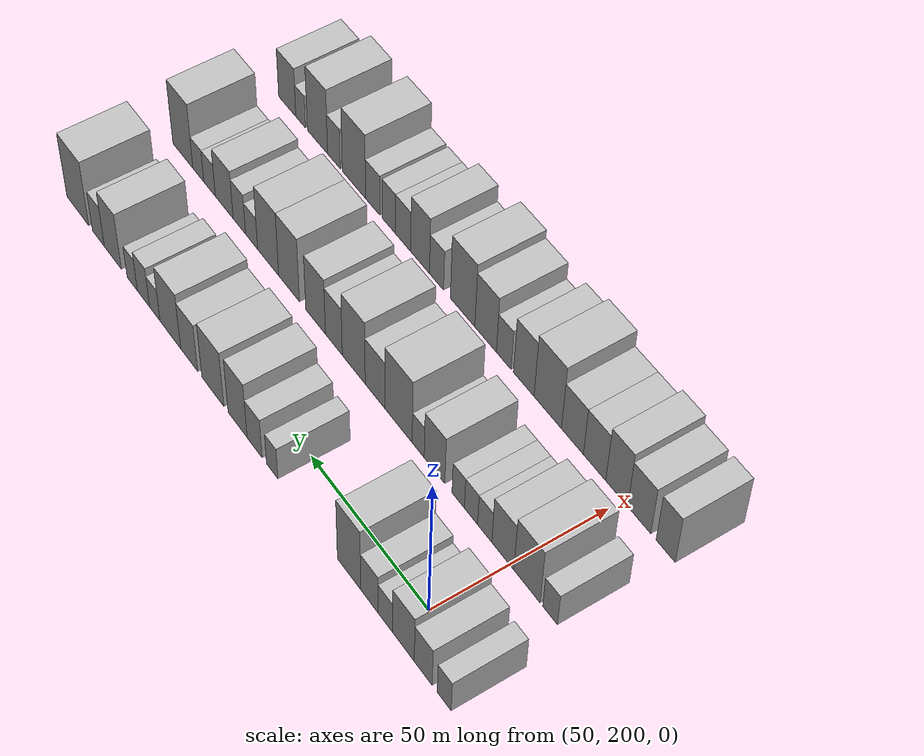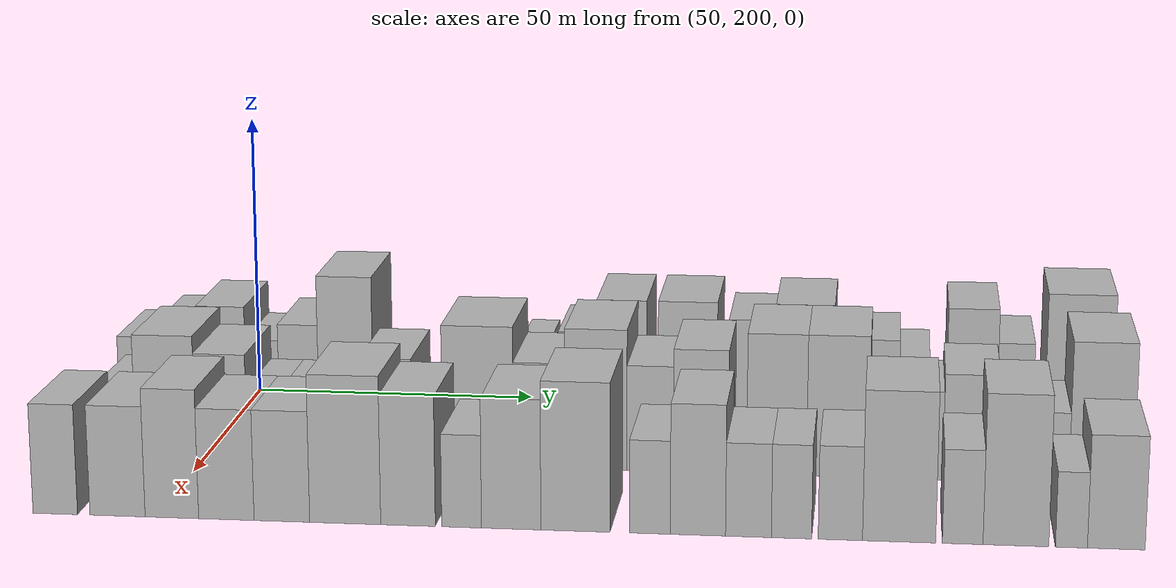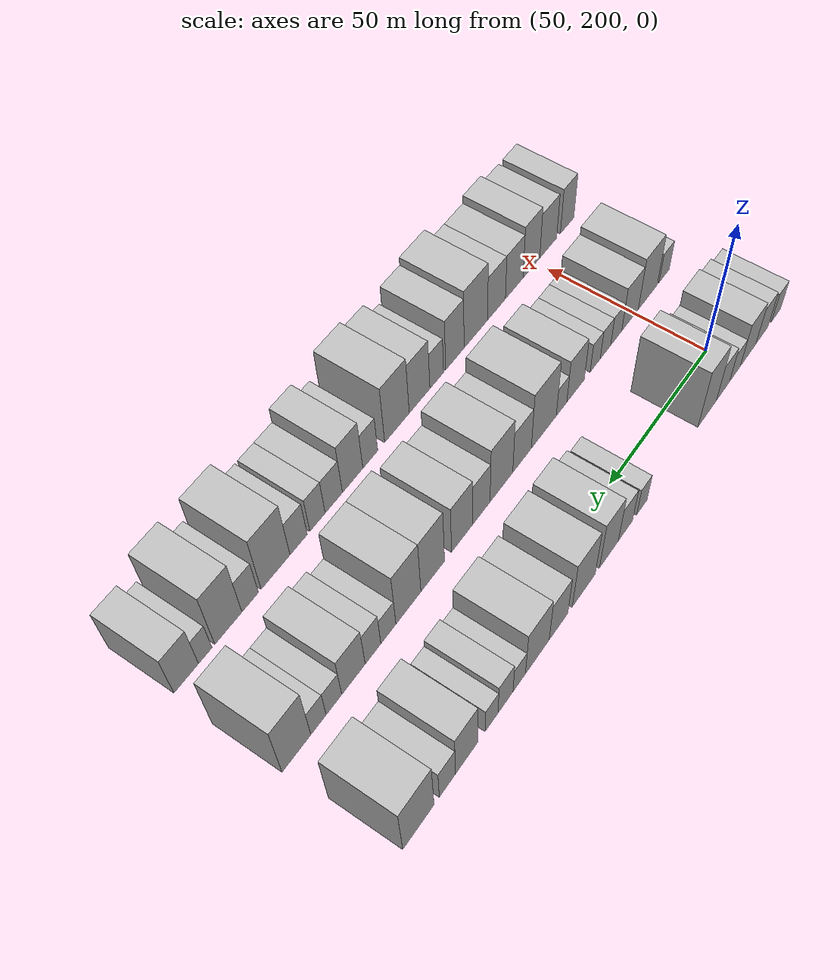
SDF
<sdf version="1.6">
 <world name="default">
  <model name="building_59">
   <static>1</static>
   <pose>50.0000 179.1119 0 0.000000 0.000000 0.000000</pose>
   <link name="link">
    <pose>0 0 6.00 0 0 0</pose>
    <collision name="collision"><geometry><box><size>20.0000 5.4572 12.0000</size></box></geometry></collision>
    <visual name="visual">
     <cast_shadows>0</cast_shadows>
     <geometry><box><size>20.0000 5.4572 12.0000</size></box></geometry>
     <material>
      <script>
       <uri>model://HANNAS_wall/materials/scripts</uri>
       <uri>model://HANNAS_wall/materials/textures</uri>
       <name>vrc/HANNAS_wall</name>
      </script>
     </material>
    </visual>
   </link>
  </model>
  <model name="building_60">
   <static>1</static>
   <pose>50.0000 187.4081 0 0.000000 0.000000 0.000000</pose>
   <link name="link">
    <pose>0 0 7.50 0 0 0</pose>
    <collision name="collision"><geometry><box><size>20.0000 7.1351 15.0000</size></box></geometry></collision>
    <visual name="visual">
     <cast_shadows>0</cast_shadows>
     <geometry><box><size>20.0000 7.1351 15.0000</size></box></geometry>
     <material>
      <script>
       <uri>model://HANNAS_wall/materials/scripts</uri>
       <uri>model://HANNAS_wall/materials/textures</uri>
       <name>vrc/HANNAS_wall</name>
      </script>
     </material>
    </visual>
   </link>
  </model>
  <model name="building_61">
   <static>1</static>
   <pose>50.0000 195.3512 0 0.000000 0.000000 0.000000</pose>
   <link name="link">
    <pose>0 0 9.00 0 0 0</pose>
    <collision name="collision"><geometry><box><size>20.0000 8.7512 18.0000</size></box></geometry></collision>
    <visual name="visual">
     <cast_shadows>0</cast_shadows>
     <geometry><box><size>20.0000 8.7512 18.0000</size></box></geometry>
     <material>
      <script>
       <uri>model://HANNAS_wall/materials/scripts</uri>
       <uri>model://HANNAS_wall/materials/textures</uri>
       <name>vrc/HANNAS_wall</name>
      </script>
     </material>
    </visual>
   </link>
  </model>
  <model name="building_62">
   <static>1</static>
   <pose>50.0000 202.7137 0 0.000000 0.000000 0.000000</pose>
   <link name="link">
    <pose>0 0 6.00 0 0 0</pose>
    <collision name="collision"><geometry><box><size>20.0000 5.9738 12.0000</size></box></geometry></collision>
    <visual name="visual">
     <cast_shadows>0</cast_shadows>
     <geometry><box><size>20.0000 5.9738 12.0000</size></box></geometry>
     <material>
      <script>
       <uri>model://HANNAS_wall/materials/scripts</uri>
       <uri>model://HANNAS_wall/materials/textures</uri>
       <name>vrc/HANNAS_wall</name>
      </script>
     </material>
    </visual>
   </link>
  </model>
  <model name="building_63">
   <static>1</static>
   <pose>50.0000 209.2945 0 0.000000 0.000000 0.000000</pose>
   <link name="link">
    <pose>0 0 7.50 0 0 0</pose>
    <collision name="collision"><geometry><box><size>20.0000 7.1877 15.0000</size></box></geometry></collision>
    <visual name="visual">
     <cast_shadows>0</cast_shadows>
     <geometry><box><size>20.0000 7.1877 15.0000</size></box></geometry>
     <material>
      <script>
       <uri>model://HANNAS_wall/materials/scripts</uri>
       <uri>model://HANNAS_wall/materials/textures</uri>
       <name>vrc/HANNAS_wall</name>
      </script>
     </material>
    </visual>
   </link>
  </model>
  <model name="building_64">
   <static>1</static>
   <pose>50.0000 217.8282 0 0.000000 0.000000 0.000000</pose>
   <link name="link">
    <pose>0 0 12.00 0 0 0</pose>
    <collision name="collision"><geometry><box><size>20.0000 9.8798 24.0000</size></box></geometry></collision>
    <visual name="visual">
     <cast_shadows>0</cast_shadows>
     <geometry><box><size>20.0000 9.8798 24.0000</size></box></geometry>
     <material>
      <script>
       <uri>model://HANNAS_wall/materials/scripts</uri>
       <uri>model://HANNAS_wall/materials/textures</uri>
       <name>vrc/HANNAS_wall</name>
      </script>
     </material>
    </visual>
   </link>
  </model>
  <model name="building_65">
   <static>1</static>
   <pose>50.0000 251.4666 0 0.000000 0.000000 0.000000</pose>
   <link name="link">
    <pose>0 0 6.00 0 0 0</pose>
    <collision name="collision"><geometry><box><size>20.0000 5.1324 12.0000</size></box></geometry></collision>
    <visual name="visual">
     <cast_shadows>0</cast_shadows>
     <geometry><box><size>20.0000 5.1324 12.0000</size></box></geometry>
     <material>
      <script>
       <uri>model://HANNAS_wall/materials/scripts</uri>
       <uri>model://HANNAS_wall/materials/textures</uri>
       <name>vrc/HANNAS_wall</name>
      </script>
     </material>
    </visual>
   </link>
  </model>
  <model name="building_66">
   <static>1</static>
   <pose>50.0000 259.4674 0 0.000000 0.000000 0.000000</pose>
   <link name="link">
    <pose>0 0 7.50 0 0 0</pose>
    <collision name="collision"><geometry><box><size>20.0000 6.8692 15.0000</size></box></geometry></collision>
    <visual name="visual">
     <cast_shadows>0</cast_shadows>
     <geometry><box><size>20.0000 6.8692 15.0000</size></box></geometry>
     <material>
      <script>
       <uri>model://HANNAS_wall/materials/scripts</uri>
       <uri>model://HANNAS_wall/materials/textures</uri>
       <name>vrc/HANNAS_wall</name>
      </script>
     </material>
    </visual>
   </link>
  </model>
  <model name="building_67">
   <static>1</static>
   <pose>50.0000 267.3208 0 0.000000 0.000000 0.000000</pose>
   <link name="link">
    <pose>0 0 10.50 0 0 0</pose>
    <collision name="collision"><geometry><box><size>20.0000 8.8375 21.0000</size></box></geometry></collision>
    <visual name="visual">
     <cast_shadows>0</cast_shadows>
     <geometry><box><size>20.0000 8.8375 21.0000</size></box></geometry>
     <material>
      <script>
       <uri>model://HANNAS_wall/materials/scripts</uri>
       <uri>model://HANNAS_wall/materials/textures</uri>
       <name>vrc/HANNAS_wall</name>
      </script>
     </material>
    </visual>
   </link>
  </model>
  <model name="building_68">
   <static>1</static>
   <pose>50.0000 278.9639 0 0.000000 0.000000 0.000000</pose>
   <link name="link">
    <pose>0 0 10.50 0 0 0</pose>
    <collision name="collision"><geometry><box><size>20.0000 10.4486 21.0000</size></box></geometry></collision>
    <visual name="visual">
     <cast_shadows>0</cast_shadows>
     <geometry><box><size>20.0000 10.4486 21.0000</size></box></geometry>
     <material>
      <script>
       <uri>model://HANNAS_wall/materials/scripts</uri>
       <uri>model://HANNAS_wall/materials/textures</uri>
       <name>vrc/HANNAS_wall</name>
      </script>
     </material>
    </visual>
   </link>
  </model>
  <model name="building_69">
   <static>1</static>
   <pose>50.0000 290.2985 0 0.000000 0.000000 0.000000</pose>
   <link name="link">
    <pose>0 0 9.00 0 0 0</pose>
    <collision name="collision"><geometry><box><size>20.0000 8.2206 18.0000</size></box></geometry></collision>
    <visual name="visual">
     <cast_shadows>0</cast_shadows>
     <geometry><box><size>20.0000 8.2206 18.0000</size></box></geometry>
     <material>
      <script>
       <uri>model://HANNAS_wall/materials/scripts</uri>
       <uri>model://HANNAS_wall/materials/textures</uri>
       <name>vrc/HANNAS_wall</name>
      </script>
     </material>
    </visual>
   </link>
  </model>
  <model name="building_70">
   <static>1</static>
   <pose>50.0000 299.5215 0 0.000000 0.000000 0.000000</pose>
   <link name="link">
    <pose>0 0 10.50 0 0 0</pose>
    <collision name="collision"><geometry><box><size>20.0000 10.2254 21.0000</size></box></geometry></collision>
    <visual name="visual">
     <cast_shadows>0</cast_shadows>
     <geometry><box><size>20.0000 10.2254 21.0000</size></box></geometry>
     <material>
      <script>
       <uri>model://HANNAS_wall/materials/scripts</uri>
       <uri>model://HANNAS_wall/materials/textures</uri>
       <name>vrc/HANNAS_wall</name>
      </script>
     </material>
    </visual>
   </link>
  </model>
  <model name="building_71">
   <static>1</static>
   <pose>50.0000 307.2506 0 0.000000 0.000000 0.000000</pose>
   <link name="link">
    <pose>0 0 6.00 0 0 0</pose>
    <collision name="collision"><geometry><box><size>20.0000 5.2328 12.0000</size></box></geometry></collision>
    <visual name="visual">
     <cast_shadows>0</cast_shadows>
     <geometry><box><size>20.0000 5.2328 12.0000</size></box></geometry>
     <material>
      <script>
       <uri>model://HANNAS_wall/materials/scripts</uri>
       <uri>model://HANNAS_wall/materials/textures</uri>
       <name>vrc/HANNAS_wall</name>
      </script>
     </material>
    </visual>
   </link>
  </model>
  <model name="building_72">
   <static>1</static>
   <pose>50.0000 312.9724 0 0.000000 0.000000 0.000000</pose>
   <link name="link">
    <pose>0 0 7.50 0 0 0</pose>
    <collision name="collision"><geometry><box><size>20.0000 6.2107 15.0000</size></box></geometry></collision>
    <visual name="visual">
     <cast_shadows>0</cast_shadows>
     <geometry><box><size>20.0000 6.2107 15.0000</size></box></geometry>
     <material>
      <script>
       <uri>model://HANNAS_wall/materials/scripts</uri>
       <uri>model://HANNAS_wall/materials/textures</uri>
       <name>vrc/HANNAS_wall</name>
      </script>
     </material>
    </visual>
   </link>
  </model>
  <model name="building_73">
   <static>1</static>
   <pose>50.0000 318.6747 0 0.000000 0.000000 0.000000</pose>
   <link name="link">
    <pose>0 0 6.00 0 0 0</pose>
    <collision name="collision"><geometry><box><size>20.0000 5.1940 12.0000</size></box></geometry></collision>
    <visual name="visual">
     <cast_shadows>0</cast_shadows>
     <geometry><box><size>20.0000 5.1940 12.0000</size></box></geometry>
     <material>
      <script>
       <uri>model://HANNAS_wall/materials/scripts</uri>
       <uri>model://HANNAS_wall/materials/textures</uri>
       <name>vrc/HANNAS_wall</name>
      </script>
     </material>
    </visual>
   </link>
  </model>
  <model name="building_74">
   <static>1</static>
   <pose>50.0000 328.6819 0 0.000000 0.000000 0.000000</pose>
   <link name="link">
    <pose>0 0 10.50 0 0 0</pose>
    <collision name="collision"><geometry><box><size>20.0000 8.8204 21.0000</size></box></geometry></collision>
    <visual name="visual">
     <cast_shadows>0</cast_shadows>
     <geometry><box><size>20.0000 8.8204 21.0000</size></box></geometry>
     <material>
      <script>
       <uri>model://HANNAS_wall/materials/scripts</uri>
       <uri>model://HANNAS_wall/materials/textures</uri>
       <name>vrc/HANNAS_wall</name>
      </script>
     </material>
    </visual>
   </link>
  </model>
  <model name="building_75">
   <static>1</static>
   <pose>50.0000 336.2281 0 0.000000 0.000000 0.000000</pose>
   <link name="link">
    <pose>0 0 7.50 0 0 0</pose>
    <collision name="collision"><geometry><box><size>20.0000 6.2719 15.0000</size></box></geometry></collision>
    <visual name="visual">
     <cast_shadows>0</cast_shadows>
     <geometry><box><size>20.0000 6.2719 15.0000</size></box></geometry>
     <material>
      <script>
       <uri>model://HANNAS_wall/materials/scripts</uri>
       <uri>model://HANNAS_wall/materials/textures</uri>
       <name>vrc/HANNAS_wall</name>
      </script>
     </material>
    </visual>
   </link>
  </model>
  <model name="building_76">
   <static>1</static>
   <pose>50.0000 347.2144 0 0.000000 0.000000 0.000000</pose>
   <link name="link">
    <pose>0 0 12.00 0 0 0</pose>
    <collision name="collision"><geometry><box><size>20.0000 11.7006 24.0000</size></box></geometry></collision>
    <visual name="visual">
     <cast_shadows>0</cast_shadows>
     <geometry><box><size>20.0000 11.7006 24.0000</size></box></geometry>
     <material>
      <script>
       <uri>model://HANNAS_wall/materials/scripts</uri>
       <uri>model://HANNAS_wall/materials/textures</uri>
       <name>vrc/HANNAS_wall</name>
      </script>
     </material>
    </visual>
   </link>
  </model>
  <model name="building_138">
   <static>1</static>
   <pose>82.0000 184.1875 0 0.000000 0.000000 0.000000</pose>
   <link name="link">
    <pose>0 0 6.00 0 0 0</pose>
    <collision name="collision"><geometry><box><size>20.0000 5.6949 12.0000</size></box></geometry></collision>
    <visual name="visual">
     <cast_shadows>0</cast_shadows>
     <geometry><box><size>20.0000 5.6949 12.0000</size></box></geometry>
     <material>
      <script>
       <uri>model://HANNAS_wall/materials/scripts</uri>
       <uri>model://HANNAS_wall/materials/textures</uri>
       <name>vrc/HANNAS_wall</name>
      </script>
     </material>
    </visual>
   </link>
  </model>
  <model name="building_139">
   <static>1</static>
   <pose>82.0000 193.1915 0 0.000000 0.000000 0.000000</pose>
   <link name="link">
    <pose>0 0 10.50 0 0 0</pose>
    <collision name="collision"><geometry><box><size>20.0000 10.3133 21.0000</size></box></geometry></collision>
    <visual name="visual">
     <cast_shadows>0</cast_shadows>
     <geometry><box><size>20.0000 10.3133 21.0000</size></box></geometry>
     <material>
      <script>
       <uri>model://HANNAS_wall/materials/scripts</uri>
       <uri>model://HANNAS_wall/materials/textures</uri>
       <name>vrc/HANNAS_wall</name>
      </script>
     </material>
    </visual>
   </link>
  </model>
  <model name="building_140">
   <static>1</static>
   <pose>82.0000 202.7714 0 0.000000 0.000000 0.000000</pose>
   <link name="link">
    <pose>0 0 9.00 0 0 0</pose>
    <collision name="collision"><geometry><box><size>20.0000 8.8464 18.0000</size></box></geometry></collision>
    <visual name="visual">
     <cast_shadows>0</cast_shadows>
     <geometry><box><size>20.0000 8.8464 18.0000</size></box></geometry>
     <material>
      <script>
       <uri>model://HANNAS_wall/materials/scripts</uri>
       <uri>model://HANNAS_wall/materials/textures</uri>
       <name>vrc/HANNAS_wall</name>
      </script>
     </material>
    </visual>
   </link>
  </model>
  <model name="building_141">
   <static>1</static>
   <pose>82.0000 210.0839 0 0.000000 0.000000 0.000000</pose>
   <link name="link">
    <pose>0 0 6.00 0 0 0</pose>
    <collision name="collision"><geometry><box><size>20.0000 5.7787 12.0000</size></box></geometry></collision>
    <visual name="visual">
     <cast_shadows>0</cast_shadows>
     <geometry><box><size>20.0000 5.7787 12.0000</size></box></geometry>
     <material>
      <script>
       <uri>model://HANNAS_wall/materials/scripts</uri>
       <uri>model://HANNAS_wall/materials/textures</uri>
       <name>vrc/HANNAS_wall</name>
      </script>
     </material>
    </visual>
   </link>
  </model>
  <model name="building_142">
   <static>1</static>
   <pose>82.0000 215.6792 0 0.000000 0.000000 0.000000</pose>
   <link name="link">
    <pose>0 0 6.00 0 0 0</pose>
    <collision name="collision"><geometry><box><size>20.0000 5.4118 12.0000</size></box></geometry></collision>
    <visual name="visual">
     <cast_shadows>0</cast_shadows>
     <geometry><box><size>20.0000 5.4118 12.0000</size></box></geometry>
     <material>
      <script>
       <uri>model://HANNAS_wall/materials/scripts</uri>
       <uri>model://HANNAS_wall/materials/textures</uri>
       <name>vrc/HANNAS_wall</name>
      </script>
     </material>
    </visual>
   </link>
  </model>
  <model name="building_143">
   <static>1</static>
   <pose>82.0000 220.9458 0 0.000000 0.000000 0.000000</pose>
   <link name="link">
    <pose>0 0 6.00 0 0 0</pose>
    <collision name="collision"><geometry><box><size>20.0000 5.1215 12.0000</size></box></geometry></collision>
    <visual name="visual">
     <cast_shadows>0</cast_shadows>
     <geometry><box><size>20.0000 5.1215 12.0000</size></box></geometry>
     <material>
      <script>
       <uri>model://HANNAS_wall/materials/scripts</uri>
       <uri>model://HANNAS_wall/materials/textures</uri>
       <name>vrc/HANNAS_wall</name>
      </script>
     </material>
    </visual>
   </link>
  </model>
  <model name="building_144">
   <static>1</static>
   <pose>82.0000 230.8604 0 0.000000 0.000000 0.000000</pose>
   <link name="link">
    <pose>0 0 9.00 0 0 0</pose>
    <collision name="collision"><geometry><box><size>20.0000 8.7075 18.0000</size></box></geometry></collision>
    <visual name="visual">
     <cast_shadows>0</cast_shadows>
     <geometry><box><size>20.0000 8.7075 18.0000</size></box></geometry>
     <material>
      <script>
       <uri>model://HANNAS_wall/materials/scripts</uri>
       <uri>model://HANNAS_wall/materials/textures</uri>
       <name>vrc/HANNAS_wall</name>
      </script>
     </material>
    </visual>
   </link>
  </model>
  <model name="building_145">
   <static>1</static>
   <pose>82.0000 237.7891 0 0.000000 0.000000 0.000000</pose>
   <link name="link">
    <pose>0 0 6.00 0 0 0</pose>
    <collision name="collision"><geometry><box><size>20.0000 5.1500 12.0000</size></box></geometry></collision>
    <visual name="visual">
     <cast_shadows>0</cast_shadows>
     <geometry><box><size>20.0000 5.1500 12.0000</size></box></geometry>
     <material>
      <script>
       <uri>model://HANNAS_wall/materials/scripts</uri>
       <uri>model://HANNAS_wall/materials/textures</uri>
       <name>vrc/HANNAS_wall</name>
      </script>
     </material>
    </visual>
   </link>
  </model>
  <model name="building_146">
   <static>1</static>
   <pose>82.0000 246.3270 0 0.000000 0.000000 0.000000</pose>
   <link name="link">
    <pose>0 0 12.00 0 0 0</pose>
    <collision name="collision"><geometry><box><size>20.0000 11.9259 24.0000</size></box></geometry></collision>
    <visual name="visual">
     <cast_shadows>0</cast_shadows>
     <geometry><box><size>20.0000 11.9259 24.0000</size></box></geometry>
     <material>
      <script>
       <uri>model://HANNAS_wall/materials/scripts</uri>
       <uri>model://HANNAS_wall/materials/textures</uri>
       <name>vrc/HANNAS_wall</name>
      </script>
     </material>
    </visual>
   </link>
  </model>
  <model name="building_147">
   <static>1</static>
   <pose>82.0000 256.6095 0 0.000000 0.000000 0.000000</pose>
   <link name="link">
    <pose>0 0 9.00 0 0 0</pose>
    <collision name="collision"><geometry><box><size>20.0000 8.6392 18.0000</size></box></geometry></collision>
    <visual name="visual">
     <cast_shadows>0</cast_shadows>
     <geometry><box><size>20.0000 8.6392 18.0000</size></box></geometry>
     <material>
      <script>
       <uri>model://HANNAS_wall/materials/scripts</uri>
       <uri>model://HANNAS_wall/materials/textures</uri>
       <name>vrc/HANNAS_wall</name>
      </script>
     </material>
    </visual>
   </link>
  </model>
  <model name="building_148">
   <static>1</static>
   <pose>82.0000 266.1068 0 0.000000 0.000000 0.000000</pose>
   <link name="link">
    <pose>0 0 12.00 0 0 0</pose>
    <collision name="collision"><geometry><box><size>20.0000 10.3553 24.0000</size></box></geometry></collision>
    <visual name="visual">
     <cast_shadows>0</cast_shadows>
     <geometry><box><size>20.0000 10.3553 24.0000</size></box></geometry>
     <material>
      <script>
       <uri>model://HANNAS_wall/materials/scripts</uri>
       <uri>model://HANNAS_wall/materials/textures</uri>
       <name>vrc/HANNAS_wall</name>
      </script>
     </material>
    </visual>
   </link>
  </model>
  <model name="building_149">
   <static>1</static>
   <pose>82.0000 275.1401 0 0.000000 0.000000 0.000000</pose>
   <link name="link">
    <pose>0 0 9.00 0 0 0</pose>
    <collision name="collision"><geometry><box><size>20.0000 7.7114 18.0000</size></box></geometry></collision>
    <visual name="visual">
     <cast_shadows>0</cast_shadows>
     <geometry><box><size>20.0000 7.7114 18.0000</size></box></geometry>
     <material>
      <script>
       <uri>model://HANNAS_wall/materials/scripts</uri>
       <uri>model://HANNAS_wall/materials/textures</uri>
       <name>vrc/HANNAS_wall</name>
      </script>
     </material>
    </visual>
   </link>
  </model>
  <model name="building_150">
   <static>1</static>
   <pose>82.0000 283.5581 0 0.000000 0.000000 0.000000</pose>
   <link name="link">
    <pose>0 0 10.50 0 0 0</pose>
    <collision name="collision"><geometry><box><size>20.0000 9.1246 21.0000</size></box></geometry></collision>
    <visual name="visual">
     <cast_shadows>0</cast_shadows>
     <geometry><box><size>20.0000 9.1246 21.0000</size></box></geometry>
     <material>
      <script>
       <uri>model://HANNAS_wall/materials/scripts</uri>
       <uri>model://HANNAS_wall/materials/textures</uri>
       <name>vrc/HANNAS_wall</name>
      </script>
     </material>
    </visual>
   </link>
  </model>
  <model name="building_151">
   <static>1</static>
   <pose>82.0000 296.0603 0 0.000000 0.000000 0.000000</pose>
   <link name="link">
    <pose>0 0 12.00 0 0 0</pose>
    <collision name="collision"><geometry><box><size>20.0000 9.8797 24.0000</size></box></geometry></collision>
    <visual name="visual">
     <cast_shadows>0</cast_shadows>
     <geometry><box><size>20.0000 9.8797 24.0000</size></box></geometry>
     <material>
      <script>
       <uri>model://HANNAS_wall/materials/scripts</uri>
       <uri>model://HANNAS_wall/materials/textures</uri>
       <name>vrc/HANNAS_wall</name>
      </script>
     </material>
    </visual>
   </link>
  </model>
  <model name="building_152">
   <static>1</static>
   <pose>82.0000 306.0980 0 0.000000 0.000000 0.000000</pose>
   <link name="link">
    <pose>0 0 12.00 0 0 0</pose>
    <collision name="collision"><geometry><box><size>20.0000 10.1957 24.0000</size></box></geometry></collision>
    <visual name="visual">
     <cast_shadows>0</cast_shadows>
     <geometry><box><size>20.0000 10.1957 24.0000</size></box></geometry>
     <material>
      <script>
       <uri>model://HANNAS_wall/materials/scripts</uri>
       <uri>model://HANNAS_wall/materials/textures</uri>
       <name>vrc/HANNAS_wall</name>
      </script>
     </material>
    </visual>
   </link>
  </model>
  <model name="building_153">
   <static>1</static>
   <pose>82.0000 314.1816 0 0.000000 0.000000 0.000000</pose>
   <link name="link">
    <pose>0 0 6.00 0 0 0</pose>
    <collision name="collision"><geometry><box><size>20.0000 5.9714 12.0000</size></box></geometry></collision>
    <visual name="visual">
     <cast_shadows>0</cast_shadows>
     <geometry><box><size>20.0000 5.9714 12.0000</size></box></geometry>
     <material>
      <script>
       <uri>model://HANNAS_wall/materials/scripts</uri>
       <uri>model://HANNAS_wall/materials/textures</uri>
       <name>vrc/HANNAS_wall</name>
      </script>
     </material>
    </visual>
   </link>
  </model>
  <model name="building_154">
   <static>1</static>
   <pose>82.0000 320.2467 0 0.000000 0.000000 0.000000</pose>
   <link name="link">
    <pose>0 0 7.50 0 0 0</pose>
    <collision name="collision"><geometry><box><size>20.0000 6.1588 15.0000</size></box></geometry></collision>
    <visual name="visual">
     <cast_shadows>0</cast_shadows>
     <geometry><box><size>20.0000 6.1588 15.0000</size></box></geometry>
     <material>
      <script>
       <uri>model://HANNAS_wall/materials/scripts</uri>
       <uri>model://HANNAS_wall/materials/textures</uri>
       <name>vrc/HANNAS_wall</name>
      </script>
     </material>
    </visual>
   </link>
  </model>
  <model name="building_155">
   <static>1</static>
   <pose>82.0000 327.8172 0 0.000000 0.000000 0.000000</pose>
   <link name="link">
    <pose>0 0 9.00 0 0 0</pose>
    <collision name="collision"><geometry><box><size>20.0000 8.9821 18.0000</size></box></geometry></collision>
    <visual name="visual">
     <cast_shadows>0</cast_shadows>
     <geometry><box><size>20.0000 8.9821 18.0000</size></box></geometry>
     <material>
      <script>
       <uri>model://HANNAS_wall/materials/scripts</uri>
       <uri>model://HANNAS_wall/materials/textures</uri>
       <name>vrc/HANNAS_wall</name>
      </script>
     </material>
    </visual>
   </link>
  </model>
  <model name="building_156">
   <static>1</static>
   <pose>82.0000 335.2470 0 0.000000 0.000000 0.000000</pose>
   <link name="link">
    <pose>0 0 6.00 0 0 0</pose>
    <collision name="collision"><geometry><box><size>20.0000 5.8776 12.0000</size></box></geometry></collision>
    <visual name="visual">
     <cast_shadows>0</cast_shadows>
     <geometry><box><size>20.0000 5.8776 12.0000</size></box></geometry>
     <material>
      <script>
       <uri>model://HANNAS_wall/materials/scripts</uri>
       <uri>model://HANNAS_wall/materials/textures</uri>
       <name>vrc/HANNAS_wall</name>
      </script>
     </material>
    </visual>
   </link>
  </model>
  <model name="building_157">
   <static>1</static>
   <pose>82.0000 340.9955 0 0.000000 0.000000 0.000000</pose>
   <link name="link">
    <pose>0 0 6.00 0 0 0</pose>
    <collision name="collision"><geometry><box><size>20.0000 5.6195 12.0000</size></box></geometry></collision>
    <visual name="visual">
     <cast_shadows>0</cast_shadows>
     <geometry><box><size>20.0000 5.6195 12.0000</size></box></geometry>
     <material>
      <script>
       <uri>model://HANNAS_wall/materials/scripts</uri>
       <uri>model://HANNAS_wall/materials/textures</uri>
       <name>vrc/HANNAS_wall</name>
      </script>
     </material>
    </visual>
   </link>
  </model>
  <model name="building_158">
   <static>1</static>
   <pose>82.0000 349.0135 0 0.000000 0.000000 0.000000</pose>
   <link name="link">
    <pose>0 0 12.00 0 0 0</pose>
    <collision name="collision"><geometry><box><size>20.0000 10.4165 24.0000</size></box></geometry></collision>
    <visual name="visual">
     <cast_shadows>0</cast_shadows>
     <geometry><box><size>20.0000 10.4165 24.0000</size></box></geometry>
     <material>
      <script>
       <uri>model://HANNAS_wall/materials/scripts</uri>
       <uri>model://HANNAS_wall/materials/textures</uri>
       <name>vrc/HANNAS_wall</name>
      </script>
     </material>
    </visual>
   </link>
  </model>
  <model name="building_218">
   <static>1</static>
   <pose>114.0000 183.5812 0 0.000000 0.000000 0.000000</pose>
   <link name="link">
    <pose>0 0 9.00 0 0 0</pose>
    <collision name="collision"><geometry><box><size>20.0000 7.2082 18.0000</size></box></geometry></collision>
    <visual name="visual">
     <cast_shadows>0</cast_shadows>
     <geometry><box><size>20.0000 7.2082 18.0000</size></box></geometry>
     <material>
      <script>
       <uri>model://HANNAS_wall/materials/scripts</uri>
       <uri>model://HANNAS_wall/materials/textures</uri>
       <name>vrc/HANNAS_wall</name>
      </script>
     </material>
    </visual>
   </link>
  </model>
  <model name="building_219">
   <static>1</static>
   <pose>114.0000 193.6387 0 0.000000 0.000000 0.000000</pose>
   <link name="link">
    <pose>0 0 9.00 0 0 0</pose>
    <collision name="collision"><geometry><box><size>20.0000 8.9067 18.0000</size></box></geometry></collision>
    <visual name="visual">
     <cast_shadows>0</cast_shadows>
     <geometry><box><size>20.0000 8.9067 18.0000</size></box></geometry>
     <material>
      <script>
       <uri>model://HANNAS_wall/materials/scripts</uri>
       <uri>model://HANNAS_wall/materials/textures</uri>
       <name>vrc/HANNAS_wall</name>
      </script>
     </material>
    </visual>
   </link>
  </model>
  <model name="building_220">
   <static>1</static>
   <pose>114.0000 202.3907 0 0.000000 0.000000 0.000000</pose>
   <link name="link">
    <pose>0 0 10.50 0 0 0</pose>
    <collision name="collision"><geometry><box><size>20.0000 8.5974 21.0000</size></box></geometry></collision>
    <visual name="visual">
     <cast_shadows>0</cast_shadows>
     <geometry><box><size>20.0000 8.5974 21.0000</size></box></geometry>
     <material>
      <script>
       <uri>model://HANNAS_wall/materials/scripts</uri>
       <uri>model://HANNAS_wall/materials/textures</uri>
       <name>vrc/HANNAS_wall</name>
      </script>
     </material>
    </visual>
   </link>
  </model>
  <model name="building_221">
   <static>1</static>
   <pose>114.0000 211.1268 0 0.000000 0.000000 0.000000</pose>
   <link name="link">
    <pose>0 0 9.00 0 0 0</pose>
    <collision name="collision"><geometry><box><size>20.0000 8.8749 18.0000</size></box></geometry></collision>
    <visual name="visual">
     <cast_shadows>0</cast_shadows>
     <geometry><box><size>20.0000 8.8749 18.0000</size></box></geometry>
     <material>
      <script>
       <uri>model://HANNAS_wall/materials/scripts</uri>
       <uri>model://HANNAS_wall/materials/textures</uri>
       <name>vrc/HANNAS_wall</name>
      </script>
     </material>
    </visual>
   </link>
  </model>
  <model name="building_222">
   <static>1</static>
   <pose>114.0000 219.9975 0 0.000000 0.000000 0.000000</pose>
   <link name="link">
    <pose>0 0 9.00 0 0 0</pose>
    <collision name="collision"><geometry><box><size>20.0000 8.8665 18.0000</size></box></geometry></collision>
    <visual name="visual">
     <cast_shadows>0</cast_shadows>
     <geometry><box><size>20.0000 8.8665 18.0000</size></box></geometry>
     <material>
      <script>
       <uri>model://HANNAS_wall/materials/scripts</uri>
       <uri>model://HANNAS_wall/materials/textures</uri>
       <name>vrc/HANNAS_wall</name>
      </script>
     </material>
    </visual>
   </link>
  </model>
  <model name="building_223">
   <static>1</static>
   <pose>114.0000 230.0649 0 0.000000 0.000000 0.000000</pose>
   <link name="link">
    <pose>0 0 12.00 0 0 0</pose>
    <collision name="collision"><geometry><box><size>20.0000 11.2683 24.0000</size></box></geometry></collision>
    <visual name="visual">
     <cast_shadows>0</cast_shadows>
     <geometry><box><size>20.0000 11.2683 24.0000</size></box></geometry>
     <material>
      <script>
       <uri>model://HANNAS_wall/materials/scripts</uri>
       <uri>model://HANNAS_wall/materials/textures</uri>
       <name>vrc/HANNAS_wall</name>
      </script>
     </material>
    </visual>
   </link>
  </model>
  <model name="building_224">
   <static>1</static>
   <pose>114.0000 240.0156 0 0.000000 0.000000 0.000000</pose>
   <link name="link">
    <pose>0 0 10.50 0 0 0</pose>
    <collision name="collision"><geometry><box><size>20.0000 8.6331 21.0000</size></box></geometry></collision>
    <visual name="visual">
     <cast_shadows>0</cast_shadows>
     <geometry><box><size>20.0000 8.6331 21.0000</size></box></geometry>
     <material>
      <script>
       <uri>model://HANNAS_wall/materials/scripts</uri>
       <uri>model://HANNAS_wall/materials/textures</uri>
       <name>vrc/HANNAS_wall</name>
      </script>
     </material>
    </visual>
   </link>
  </model>
  <model name="building_225">
   <static>1</static>
   <pose>114.0000 248.4577 0 0.000000 0.000000 0.000000</pose>
   <link name="link">
    <pose>0 0 7.50 0 0 0</pose>
    <collision name="collision"><geometry><box><size>20.0000 6.2511 15.0000</size></box></geometry></collision>
    <visual name="visual">
     <cast_shadows>0</cast_shadows>
     <geometry><box><size>20.0000 6.2511 15.0000</size></box></geometry>
     <material>
      <script>
       <uri>model://HANNAS_wall/materials/scripts</uri>
       <uri>model://HANNAS_wall/materials/textures</uri>
       <name>vrc/HANNAS_wall</name>
      </script>
     </material>
    </visual>
   </link>
  </model>
  <model name="building_226">
   <static>1</static>
   <pose>114.0000 256.2427 0 0.000000 0.000000 0.000000</pose>
   <link name="link">
    <pose>0 0 10.50 0 0 0</pose>
    <collision name="collision"><geometry><box><size>20.0000 9.3188 21.0000</size></box></geometry></collision>
    <visual name="visual">
     <cast_shadows>0</cast_shadows>
     <geometry><box><size>20.0000 9.3188 21.0000</size></box></geometry>
     <material>
      <script>
       <uri>model://HANNAS_wall/materials/scripts</uri>
       <uri>model://HANNAS_wall/materials/textures</uri>
       <name>vrc/HANNAS_wall</name>
      </script>
     </material>
    </visual>
   </link>
  </model>
  <model name="building_227">
   <static>1</static>
   <pose>114.0000 266.3054 0 0.000000 0.000000 0.000000</pose>
   <link name="link">
    <pose>0 0 12.00 0 0 0</pose>
    <collision name="collision"><geometry><box><size>20.0000 10.8066 24.0000</size></box></geometry></collision>
    <visual name="visual">
     <cast_shadows>0</cast_shadows>
     <geometry><box><size>20.0000 10.8066 24.0000</size></box></geometry>
     <material>
      <script>
       <uri>model://HANNAS_wall/materials/scripts</uri>
       <uri>model://HANNAS_wall/materials/textures</uri>
       <name>vrc/HANNAS_wall</name>
      </script>
     </material>
    </visual>
   </link>
  </model>
  <model name="building_228">
   <static>1</static>
   <pose>114.0000 277.8816 0 0.000000 0.000000 0.000000</pose>
   <link name="link">
    <pose>0 0 7.50 0 0 0</pose>
    <collision name="collision"><geometry><box><size>20.0000 6.3459 15.0000</size></box></geometry></collision>
    <visual name="visual">
     <cast_shadows>0</cast_shadows>
     <geometry><box><size>20.0000 6.3459 15.0000</size></box></geometry>
     <material>
      <script>
       <uri>model://HANNAS_wall/materials/scripts</uri>
       <uri>model://HANNAS_wall/materials/textures</uri>
       <name>vrc/HANNAS_wall</name>
      </script>
     </material>
    </visual>
   </link>
  </model>
  <model name="building_229">
   <static>1</static>
   <pose>114.0000 285.3345 0 0.000000 0.000000 0.000000</pose>
   <link name="link">
    <pose>0 0 10.50 0 0 0</pose>
    <collision name="collision"><geometry><box><size>20.0000 8.5598 21.0000</size></box></geometry></collision>
    <visual name="visual">
     <cast_shadows>0</cast_shadows>
     <geometry><box><size>20.0000 8.5598 21.0000</size></box></geometry>
     <material>
      <script>
       <uri>model://HANNAS_wall/materials/scripts</uri>
       <uri>model://HANNAS_wall/materials/textures</uri>
       <name>vrc/HANNAS_wall</name>
      </script>
     </material>
    </visual>
   </link>
  </model>
  <model name="building_230">
   <static>1</static>
   <pose>114.0000 293.1468 0 0.000000 0.000000 0.000000</pose>
   <link name="link">
    <pose>0 0 7.50 0 0 0</pose>
    <collision name="collision"><geometry><box><size>20.0000 7.0647 15.0000</size></box></geometry></collision>
    <visual name="visual">
     <cast_shadows>0</cast_shadows>
     <geometry><box><size>20.0000 7.0647 15.0000</size></box></geometry>
     <material>
      <script>
       <uri>model://HANNAS_wall/materials/scripts</uri>
       <uri>model://HANNAS_wall/materials/textures</uri>
       <name>vrc/HANNAS_wall</name>
      </script>
     </material>
    </visual>
   </link>
  </model>
  <model name="building_231">
   <static>1</static>
   <pose>114.0000 299.7803 0 0.000000 0.000000 0.000000</pose>
   <link name="link">
    <pose>0 0 7.50 0 0 0</pose>
    <collision name="collision"><geometry><box><size>20.0000 6.2025 15.0000</size></box></geometry></collision>
    <visual name="visual">
     <cast_shadows>0</cast_shadows>
     <geometry><box><size>20.0000 6.2025 15.0000</size></box></geometry>
     <material>
      <script>
       <uri>model://HANNAS_wall/materials/scripts</uri>
       <uri>model://HANNAS_wall/materials/textures</uri>
       <name>vrc/HANNAS_wall</name>
      </script>
     </material>
    </visual>
   </link>
  </model>
  <model name="building_232">
   <static>1</static>
   <pose>114.0000 307.2799 0 0.000000 0.000000 0.000000</pose>
   <link name="link">
    <pose>0 0 7.50 0 0 0</pose>
    <collision name="collision"><geometry><box><size>20.0000 6.7966 15.0000</size></box></geometry></collision>
    <visual name="visual">
     <cast_shadows>0</cast_shadows>
     <geometry><box><size>20.0000 6.7966 15.0000</size></box></geometry>
     <material>
      <script>
       <uri>model://HANNAS_wall/materials/scripts</uri>
       <uri>model://HANNAS_wall/materials/textures</uri>
       <name>vrc/HANNAS_wall</name>
      </script>
     </material>
    </visual>
   </link>
  </model>
  <model name="building_233">
   <static>1</static>
   <pose>114.0000 316.2631 0 0.000000 0.000000 0.000000</pose>
   <link name="link">
    <pose>0 0 12.00 0 0 0</pose>
    <collision name="collision"><geometry><box><size>20.0000 11.1699 24.0000</size></box></geometry></collision>
    <visual name="visual">
     <cast_shadows>0</cast_shadows>
     <geometry><box><size>20.0000 11.1699 24.0000</size></box></geometry>
     <material>
      <script>
       <uri>model://HANNAS_wall/materials/scripts</uri>
       <uri>model://HANNAS_wall/materials/textures</uri>
       <name>vrc/HANNAS_wall</name>
      </script>
     </material>
    </visual>
   </link>
  </model>
  <model name="building_234">
   <static>1</static>
   <pose>114.0000 325.9386 0 0.000000 0.000000 0.000000</pose>
   <link name="link">
    <pose>0 0 7.50 0 0 0</pose>
    <collision name="collision"><geometry><box><size>20.0000 6.1811 15.0000</size></box></geometry></collision>
    <visual name="visual">
     <cast_shadows>0</cast_shadows>
     <geometry><box><size>20.0000 6.1811 15.0000</size></box></geometry>
     <material>
      <script>
       <uri>model://HANNAS_wall/materials/scripts</uri>
       <uri>model://HANNAS_wall/materials/textures</uri>
       <name>vrc/HANNAS_wall</name>
      </script>
     </material>
    </visual>
   </link>
  </model>
  <model name="building_235">
   <static>1</static>
   <pose>114.0000 334.0140 0 0.000000 0.000000 0.000000</pose>
   <link name="link">
    <pose>0 0 12.00 0 0 0</pose>
    <collision name="collision"><geometry><box><size>20.0000 9.9698 24.0000</size></box></geometry></collision>
    <visual name="visual">
     <cast_shadows>0</cast_shadows>
     <geometry><box><size>20.0000 9.9698 24.0000</size></box></geometry>
     <material>
      <script>
       <uri>model://HANNAS_wall/materials/scripts</uri>
       <uri>model://HANNAS_wall/materials/textures</uri>
       <name>vrc/HANNAS_wall</name>
      </script>
     </material>
    </visual>
   </link>
  </model>
  <model name="building_236">
   <static>1</static>
   <pose>114.0000 342.4089 0 0.000000 0.000000 0.000000</pose>
   <link name="link">
    <pose>0 0 6.00 0 0 0</pose>
    <collision name="collision"><geometry><box><size>20.0000 4.8200 12.0000</size></box></geometry></collision>
    <visual name="visual">
     <cast_shadows>0</cast_shadows>
     <geometry><box><size>20.0000 4.8200 12.0000</size></box></geometry>
     <material>
      <script>
       <uri>model://HANNAS_wall/materials/scripts</uri>
       <uri>model://HANNAS_wall/materials/textures</uri>
       <name>vrc/HANNAS_wall</name>
      </script>
     </material>
    </visual>
   </link>
  </model>
  <model name="building_237">
   <static>1</static>
   <pose>114.0000 349.1568 0 0.000000 0.000000 0.000000</pose>
   <link name="link">
    <pose>0 0 9.00 0 0 0</pose>
    <collision name="collision"><geometry><box><size>20.0000 8.6757 18.0000</size></box></geometry></collision>
    <visual name="visual">
     <cast_shadows>0</cast_shadows>
     <geometry><box><size>20.0000 8.6757 18.0000</size></box></geometry>
     <material>
      <script>
       <uri>model://HANNAS_wall/materials/scripts</uri>
       <uri>model://HANNAS_wall/materials/textures</uri>
       <name>vrc/HANNAS_wall</name>
      </script>
     </material>
    </visual>
   </link>
  </model>
 </world>
</sdf>
